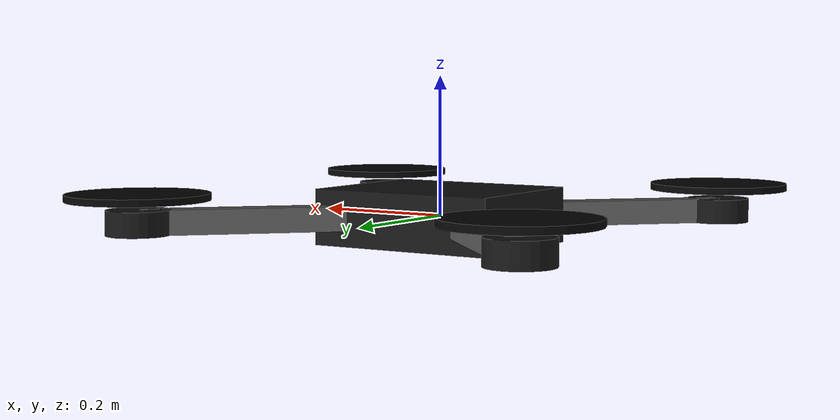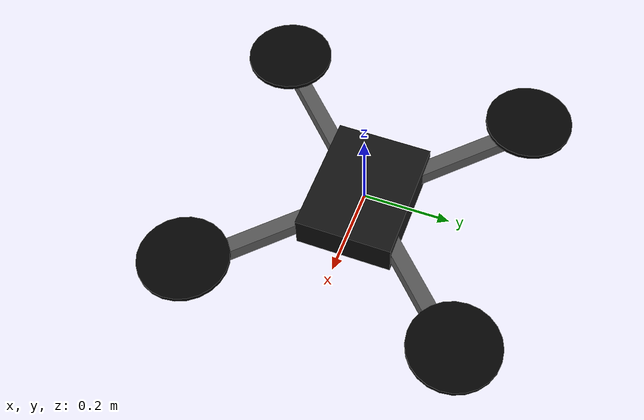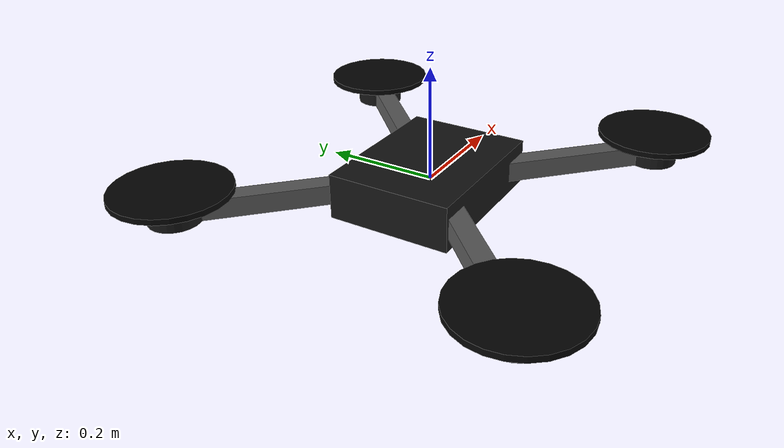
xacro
<?xml version="1.0"?>
<robot xmlns:xacro="http://www.ros.org/wiki/xacro"
       name="x500">

  <!-- Materials                 -->

  <material name="body_black">
    <color rgba="0.08 0.08 0.08 1.0"/>
  </material>

  <material name="arm_gray">
    <color rgba="0.35 0.35 0.35 1.0"/>
  </material>

  <material name="prop_dark">
    <color rgba="0.02 0.02 0.02 1.0"/>
  </material>

  <!-- Base / Main Body          -->

  <link name="base_link">

    <visual>
      <origin xyz="0 0 0" rpy="0 0 0"/>
      <geometry>
        <box size="0.28 0.22 0.08"/>
      </geometry>
      <material name="body_black"/>
    </visual>

    <collision>
      <origin xyz="0 0 0" rpy="0 0 0"/>
      <geometry>
        <box size="0.28 0.22 0.08"/>
      </geometry>
    </collision>

    <inertial>
      <origin xyz="0 0 0" rpy="0 0 0"/>
      <mass value="1.5"/>
      <inertia
        ixx="0.03"
        ixy="0.0"
        ixz="0.0"
        iyy="0.03"
        iyz="0.0"
        izz="0.05"/>
    </inertial>

  </link>

  <!-- Front Left Arm            -->

  <link name="front_left_arm">
    <visual>
      <origin xyz="0.15 0.15 0" rpy="0 0 0.7854"/>
      <geometry>
        <box size="0.42 0.035 0.035"/>
      </geometry>
      <material name="arm_gray"/>
    </visual>
  </link>

  <joint name="front_left_arm_joint"
         type="fixed">
    <parent link="base_link"/>
    <child link="front_left_arm"/>
    <origin xyz="0 0 0" rpy="0 0 0"/>
  </joint>

  <!-- Front Right Arm           -->

  <link name="front_right_arm">
    <visual>
      <origin xyz="0.15 -0.15 0" rpy="0 0 -0.7854"/>
      <geometry>
        <box size="0.42 0.035 0.035"/>
      </geometry>
      <material name="arm_gray"/>
    </visual>
  </link>

  <joint name="front_right_arm_joint"
         type="fixed">
    <parent link="base_link"/>
    <child link="front_right_arm"/>
    <origin xyz="0 0 0" rpy="0 0 0"/>
  </joint>

  <!-- Rear Left Arm             -->

  <link name="rear_left_arm">
    <visual>
      <origin xyz="-0.15 0.15 0" rpy="0 0 -0.7854"/>
      <geometry>
        <box size="0.42 0.035 0.035"/>
      </geometry>
      <material name="arm_gray"/>
    </visual>
  </link>

  <joint name="rear_left_arm_joint"
         type="fixed">
    <parent link="base_link"/>
    <child link="rear_left_arm"/>
    <origin xyz="0 0 0" rpy="0 0 0"/>
  </joint>

  <!-- Rear Right Arm            -->

  <link name="rear_right_arm">
    <visual>
      <origin xyz="-0.15 -0.15 0" rpy="0 0 0.7854"/>
      <geometry>
        <box size="0.42 0.035 0.035"/>
      </geometry>
      <material name="arm_gray"/>
    </visual>
  </link>

  <joint name="rear_right_arm_joint"
         type="fixed">
    <parent link="base_link"/>
    <child link="rear_right_arm"/>
    <origin xyz="0 0 0" rpy="0 0 0"/>
  </joint>

  <!-- Motor / Propellers        -->

  <link name="front_left_motor">
    <visual>
      <origin xyz="0 0 0" rpy="0 0 0"/>
      <geometry>
        <cylinder radius="0.045" length="0.035"/>
      </geometry>
      <material name="body_black"/>
    </visual>
  </link>

  <joint name="front_left_motor_joint"
         type="fixed">
    <parent link="base_link"/>
    <child link="front_left_motor"/>
    <origin xyz="0.30 0.30 0" rpy="0 0 0"/>
  </joint>

  <link name="front_right_motor">
    <visual>
      <geometry>
        <cylinder radius="0.045" length="0.035"/>
      </geometry>
      <material name="body_black"/>
    </visual>
  </link>

  <joint name="front_right_motor_joint"
         type="fixed">
    <parent link="base_link"/>
    <child link="front_right_motor"/>
    <origin xyz="0.30 -0.30 0" rpy="0 0 0"/>
  </joint>

  <link name="rear_left_motor">
    <visual>
      <geometry>
        <cylinder radius="0.045" length="0.035"/>
      </geometry>
      <material name="body_black"/>
    </visual>
  </link>

  <joint name="rear_left_motor_joint"
         type="fixed">
    <parent link="base_link"/>
    <child link="rear_left_motor"/>
    <origin xyz="-0.30 0.30 0" rpy="0 0 0"/>
  </joint>

  <link name="rear_right_motor">
    <visual>
      <geometry>
        <cylinder radius="0.045" length="0.035"/>
      </geometry>
      <material name="body_black"/>
    </visual>
  </link>

  <joint name="rear_right_motor_joint"
         type="fixed">
    <parent link="base_link"/>
    <child link="rear_right_motor"/>
    <origin xyz="-0.30 -0.30 0" rpy="0 0 0"/>
  </joint>

  <!-- Propeller Visuals         -->

  <link name="front_left_propeller">
    <visual>
      <geometry>
        <cylinder radius="0.10" length="0.01"/>
      </geometry>
      <material name="prop_dark"/>
    </visual>
  </link>

  <joint name="front_left_propeller_joint"
         type="fixed">
    <parent link="base_link"/>
    <child link="front_left_propeller"/>
    <origin xyz="0.30 0.30 0.035" rpy="0 0 0"/>
  </joint>

  <link name="front_right_propeller">
    <visual>
      <geometry>
        <cylinder radius="0.10" length="0.01"/>
      </geometry>
      <material name="prop_dark"/>
    </visual>
  </link>

  <joint name="front_right_propeller_joint"
         type="fixed">
    <parent link="base_link"/>
    <child link="front_right_propeller"/>
    <origin xyz="0.30 -0.30 0.035" rpy="0 0 0"/>
  </joint>

  <link name="rear_left_propeller">
    <visual>
      <geometry>
        <cylinder radius="0.10" length="0.01"/>
      </geometry>
      <material name="prop_dark"/>
    </visual>
  </link>

  <joint name="rear_left_propeller_joint"
         type="fixed">
    <parent link="base_link"/>
    <child link="rear_left_propeller"/>
    <origin xyz="-0.30 0.30 0.035" rpy="0 0 0"/>
  </joint>

  <link name="rear_right_propeller">
    <visual>
      <geometry>
        <cylinder radius="0.10" length="0.01"/>
      </geometry>
      <material name="prop_dark"/>
    </visual>
  </link>

  <joint name="rear_right_propeller_joint"
         type="fixed">
    <parent link="base_link"/>
    <child link="rear_right_propeller"/>
    <origin xyz="-0.30 -0.30 0.035" rpy="0 0 0"/>
  </joint>

</robot>
